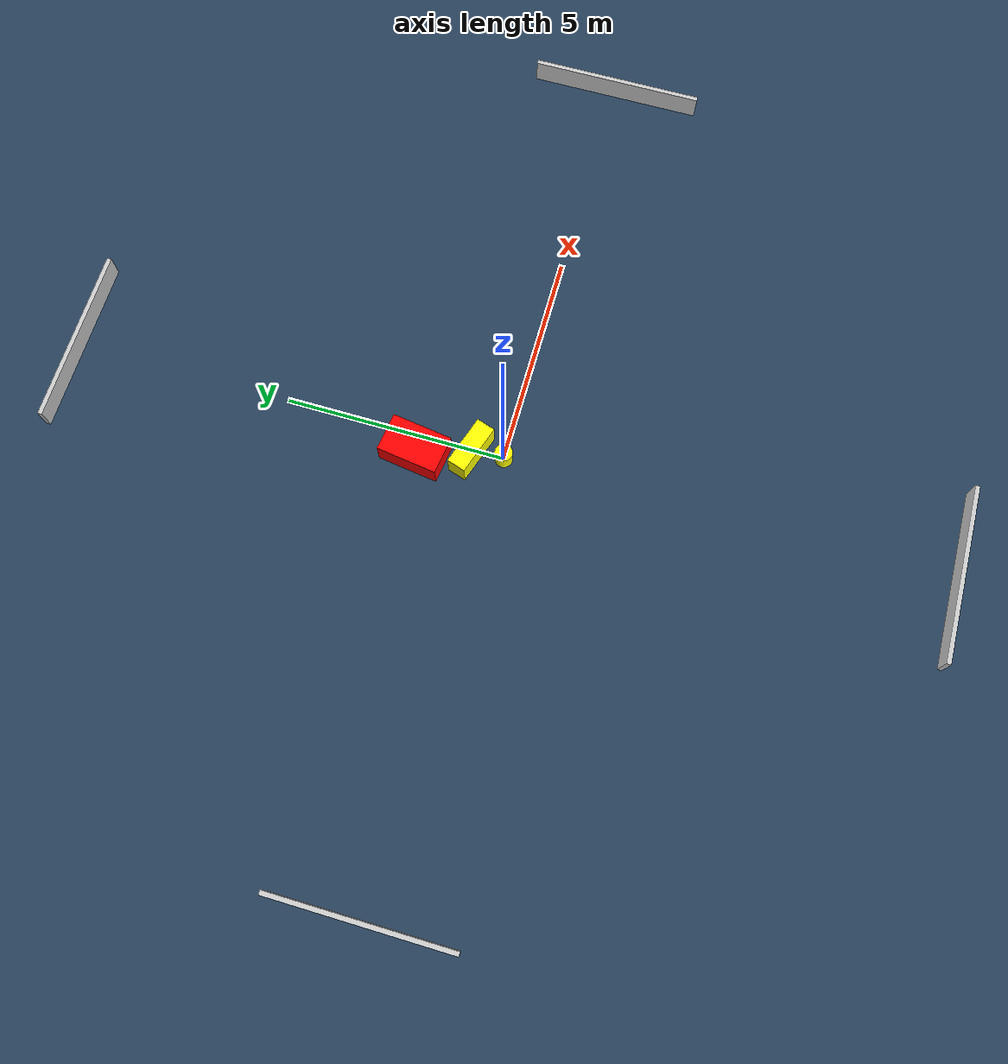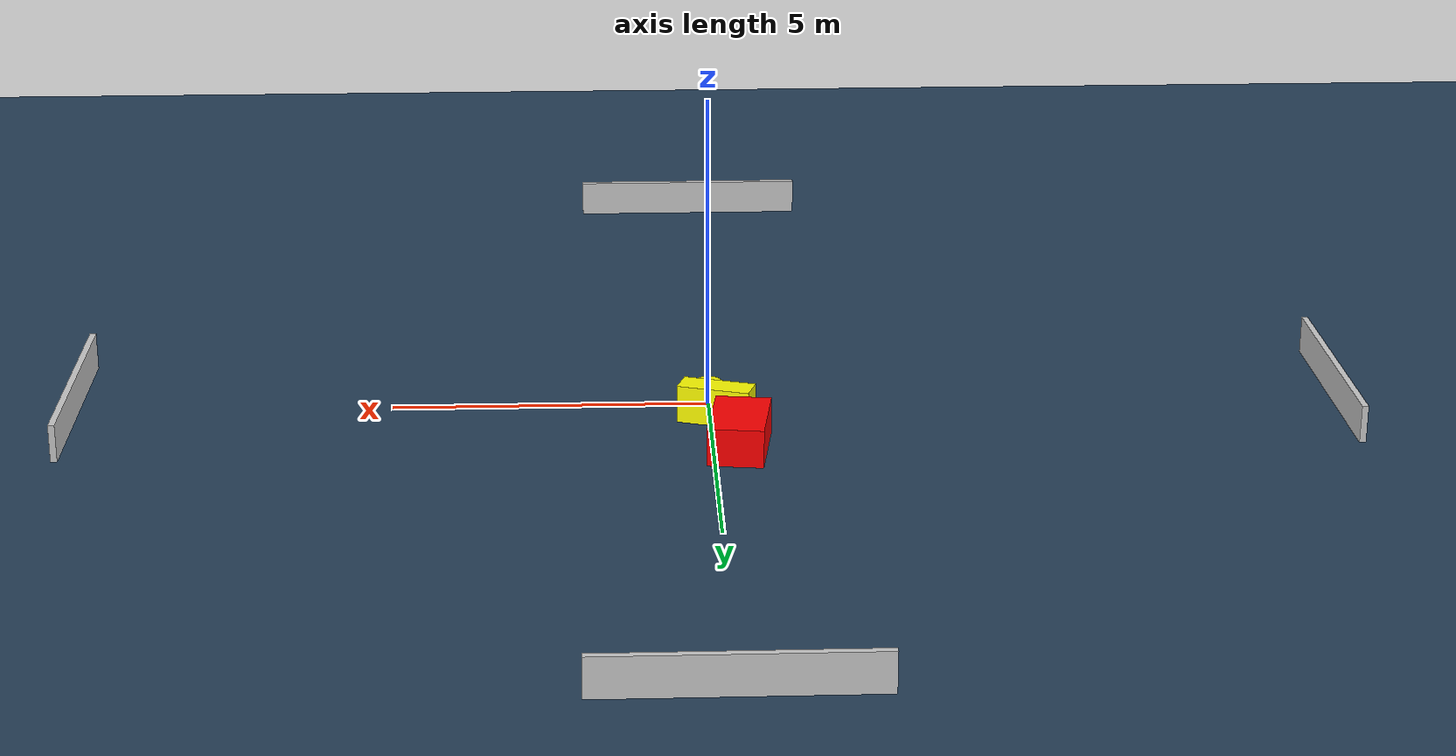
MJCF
<?xml version="1.0" ?>
<mujoco model="generated_environment">
  <option timestep="0.01" integrator="RK4" cone="elliptic"/>
  <default>
    <geom density="1"/>
  </default>
  <asset>
    <texture builtin="gradient" height="3072" name="skybox" rgb1="0.3 0.5 0.7" rgb2="0 0 0" type="skybox" width="512"/>
    <texture builtin="checker" height="300" name="groundplane" rgb1="0.2 0.3 0.4" rgb2="0.1 0.2 0.3" type="2d" width="300"/>
    <material name="groundplane" reflectance="0.2" texrepeat="5 5" texture="groundplane"/>
  </asset>
  <worldbody>
    <light dir="0 0 -1" directional="true" pos="0 0 1.5"/>
    <geom condim="3" friction="0.5 0.005 0.001" material="groundplane" name="floor" pos="0 0 0" size="0 0 0.05" type="plane"/>
    <body name="walls">
      <geom name="wall_1" condim="4" pos="-10.0 0.0 0.3" rgba="0.800000011920929 0.800000011920929 0.800000011920929 1.0" size="0.05 2.0 0.3" type="box"/>
      <geom name="wall_2" condim="4" pos="10.0 0.0 0.3" rgba="0.800000011920929 0.800000011920929 0.800000011920929 1.0" size="0.05 2.0 0.3" type="box"/>
      <geom name="wall_3" condim="4" pos="0.0 -10.0 0.3" rgba="0.800000011920929 0.800000011920929 0.800000011920929 1.0" size="2.0 0.05 0.3" type="box"/>
      <geom name="wall_4" condim="4" pos="0.0 10.0 0.3" rgba="0.800000011920929 0.800000011920929 0.800000011920929 1.0" size="2.0 0.05 0.3" type="box"/>
    </body>
    <body name="robot">
      <joint name="joint_x" type="slide" pos="0 0 0" axis="1 0 0"/>
      <joint name="joint_y" type="slide" pos="0 0 0" axis="0 1 0"/>
      <geom name="robot" type="cylinder" pos="0.0 0.0 0.2" size="0.2 0.2 0.0" mass="5.0" friction="1.0 0.005 0.0001" condim="4" rgba="1.0 1.0 0.0 1.0"/>
    </body>
    <body name="obstacle_1_movable">
      <geom name="obstacle_1_movable" condim="4" pos="-0.09441844787828395 0.7109846591372817 0.3" euler="0 0 251.8050372028267" friction="0.0 0.005 0.001" rgba="1.0 1.0 0.0 1.0" size="0.21671661596870964 0.5780067208464073 0.3" type="box" mass="0.1"/>
      <joint type="free"/>
    </body>
    <body name="obstacle_2_static">
      <geom name="obstacle_2_static" condim="4" pos="-0.3986983267390201 1.9088306168125984 0.3" euler="0 0 262.04014024712006" friction="0.0 0.005 0.001" rgba="1.0 0.0 0.0 1.0" size="0.6888952190018325 0.43074437665234555 0.3" type="box"/>
    </body>
  </worldbody>
  <actuator>
    <motor name="actuator_x" joint="joint_x" gear="1" ctrlrange="-1 1"/>
    <motor name="actuator_y" joint="joint_y" gear="1" ctrlrange="-1 1"/>
  </actuator>
</mujoco>
